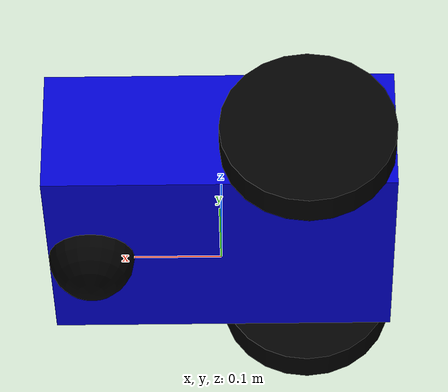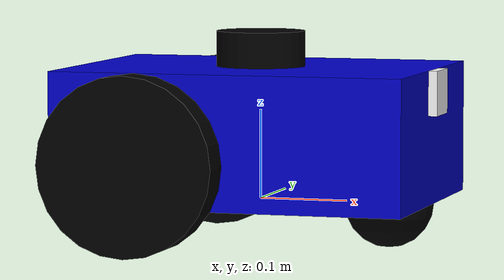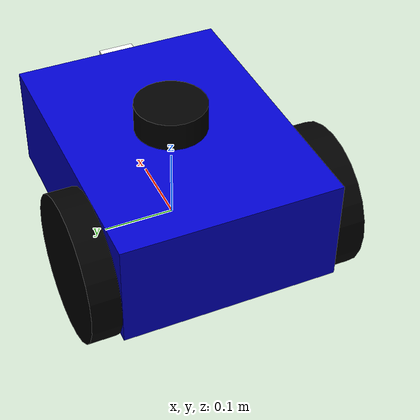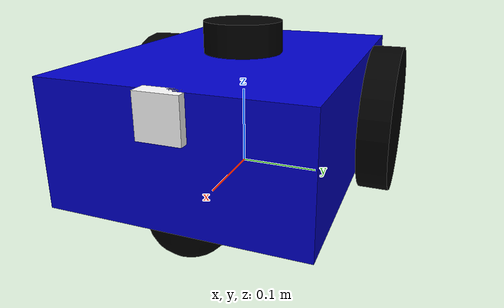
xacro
<?xml version="1.0"?>
<robot xmlns:xacro="http://www.ros.org/wiki/xacro" name="rescue_bot">

    <material name="blue"><color rgba="0 0 0.8 1"/></material>
    <material name="black"><color rgba="0 0 0 1"/></material>
    <material name="white"><color rgba="1 1 1 1"/></material>
    <link name="base_footprint"/>
    <joint name="base_joint" type="fixed">
        <parent link="base_footprint"/>
        <child link="base_link"/>
        <origin xyz="0 0 0.075" rpy="0 0 0"/>
    </joint>

    <link name="base_link">
        <visual>
            <geometry><box size="0.4 0.3 0.15"/></geometry>
            <material name="blue"/>
        </visual>
        <collision>
            <geometry><box size="0.4 0.3 0.15"/></geometry>
        </collision>
        <inertial>
            <mass value="5.0"/>
            <inertia ixx="0.046" ixy="0" ixz="0" iyy="0.076" iyz="0" izz="0.104"/>
        </inertial>
    </link>

    <link name="caster_wheel">
        <visual>
            <geometry><sphere radius="0.05"/></geometry>
            <material name="black"/>
        </visual>
        <collision>
            <geometry><sphere radius="0.05"/></geometry>
        </collision>
        <inertial>
            <mass value="0.5"/>
            <inertia ixx="0.0005" ixy="0" ixz="0" iyy="0.0005" iyz="0" izz="0.0005"/>
        </inertial>
    </link>
    <joint name="caster_joint" type="fixed">
        <parent link="base_link"/>
        <child link="caster_wheel"/>
        <origin xyz="0.15 0 -0.075" rpy="0 0 0"/>
    </joint>

    <xacro:macro name="wheel" params="prefix y_offset">
        <link name="${prefix}_wheel">
            <visual>
                <geometry><cylinder radius="0.1" length="0.04"/></geometry>
                <material name="black"/>
            </visual>
            <collision>
                <geometry><cylinder radius="0.1" length="0.04"/></geometry>
            </collision>
            <inertial>
                <mass value="1.0"/>
                <inertia ixx="0.0026" ixy="0" ixz="0" iyy="0.0026" iyz="0" izz="0.005"/>
            </inertial>
        </link>
        <joint name="${prefix}_wheel_joint" type="continuous">
            <parent link="base_link"/>
            <child link="${prefix}_wheel"/>
            <origin xyz="-0.1 ${y_offset} -0.025" rpy="-1.5708 0 0"/>
            <axis xyz="0 0 1"/>
        </joint>
    </xacro:macro>

    <xacro:wheel prefix="left" y_offset="0.17"/>
    <xacro:wheel prefix="right" y_offset="-0.17"/>

    <link name="laser_frame">
        <visual>
            <geometry><cylinder radius="0.05" length="0.04"/></geometry>
            <material name="black"/>
        </visual>
    </link>
    <joint name="laser_joint" type="fixed">
        <parent link="base_link"/>
        <child link="laser_frame"/>
        <origin xyz="0 0 0.095" rpy="0 0 0"/>
    </joint>

    <link name="camera_link">
        <visual>
            <geometry><box size="0.02 0.05 0.05"/></geometry>
            <material name="white"/>
        </visual>
    </link>
    <joint name="camera_joint" type="fixed">
        <parent link="base_link"/>
        <child link="camera_link"/>
        <origin xyz="0.2 0 0.05" rpy="0 0 0"/>
    </joint>

<gazebo>
        <plugin filename="gz-sim-diff-drive-system" name="gz::sim::systems::DiffDrive">
            <left_joint>left_wheel_joint</left_joint>
            <right_joint>right_wheel_joint</right_joint>
            <wheel_separation>0.34</wheel_separation>
            <wheel_radius>0.1</wheel_radius>
            <odom_publish_frequency>50</odom_publish_frequency>
            <topic>/cmd_vel</topic>
            <odom_topic>/odom</odom_topic>
            <frame_id>odom</frame_id>
	    <child_frame_id>base_footprint</child_frame_id>
        </plugin>
        <plugin filename="gz-sim-joint-state-publisher-system" name="gz::sim::systems::JointStatePublisher">
            <topic>joint_states</topic>
            <joint_name>left_wheel_joint</joint_name>
            <joint_name>right_wheel_joint</joint_name>
        </plugin>
    </gazebo>

    <gazebo reference="laser_frame">
        <sensor name="laser" type="gpu_lidar">
            <pose>0 0 0 0 0 0</pose>
            <always_on>true</always_on>
            <visualize>true</visualize>
            <update_rate>10</update_rate>
            <topic>/scan</topic>
            <gz_frame_id>laser_frame</gz_frame_id>
            <lidar>
                <scan>
                    <horizontal>
                        <samples>360</samples>
                        <resolution>1</resolution>
                        <min_angle>-3.14</min_angle>
                        <max_angle>3.14</max_angle>
                    </horizontal>
                </scan>
                <range>
                    <min>0.3</min>
                    <max>12.0</max>
                </range>
            </lidar>
        </sensor>
    </gazebo>

    <gazebo reference="camera_link">
        <sensor name="camera" type="camera">
            <always_on>true</always_on>
            <visualize>true</visualize>
            <update_rate>30.0</update_rate>
            <topic>/camera/image_raw</topic>
            <gz_frame_id>camera_link</gz_frame_id>
            <camera>
                <horizontal_fov>1.3962634</horizontal_fov>
                <image>
                    <width>800</width>
                    <height>800</height>
                    <format>R8G8B8</format>
                </image>
                <clip>
                    <near>0.02</near>
                    <far>300</far>
                </clip>
            </camera>
        </sensor>
    </gazebo>
</robot>
